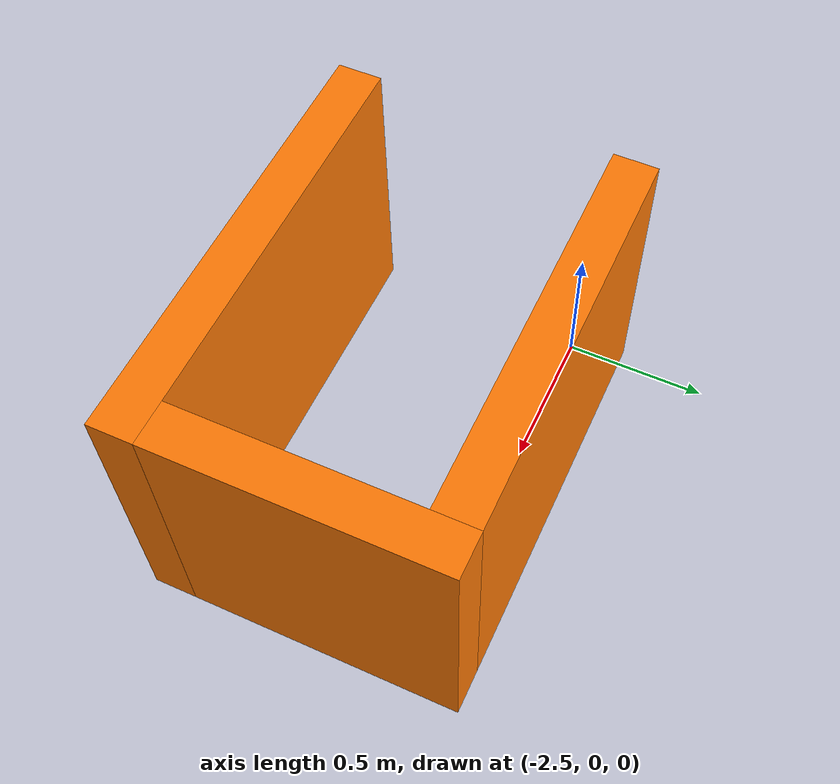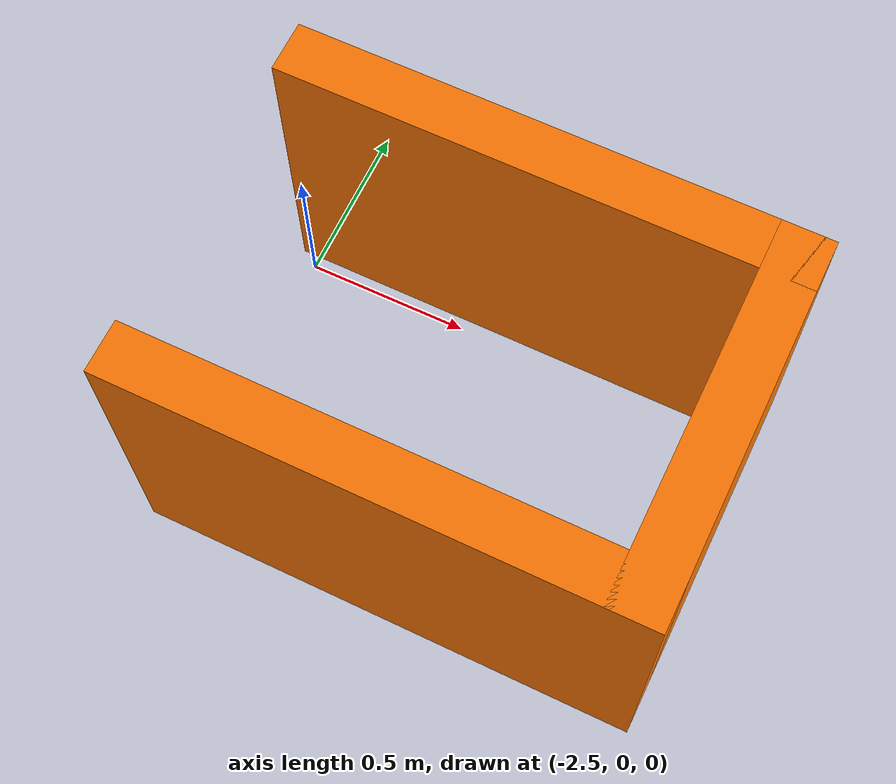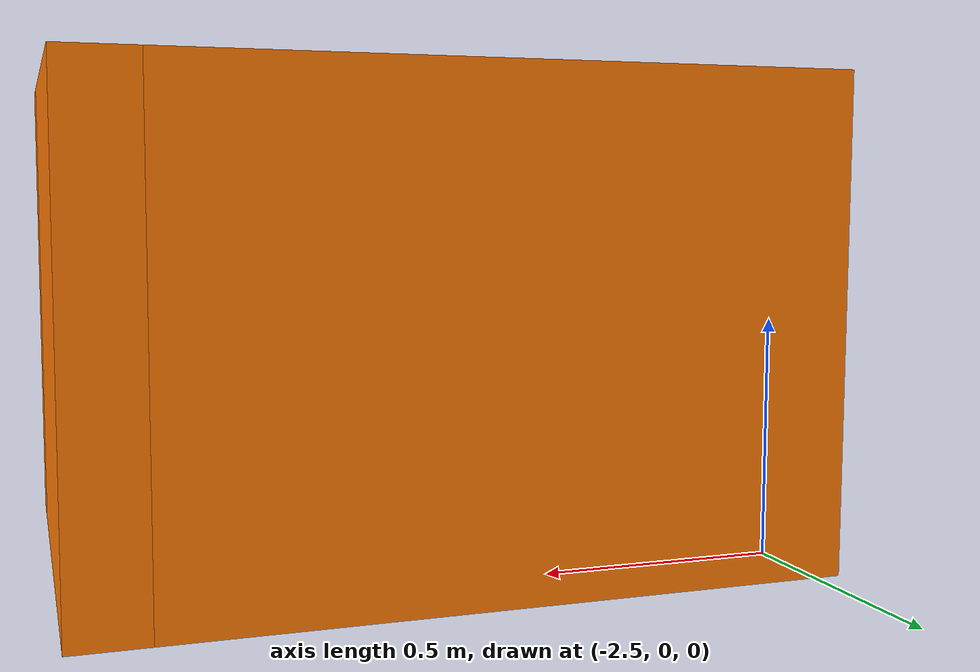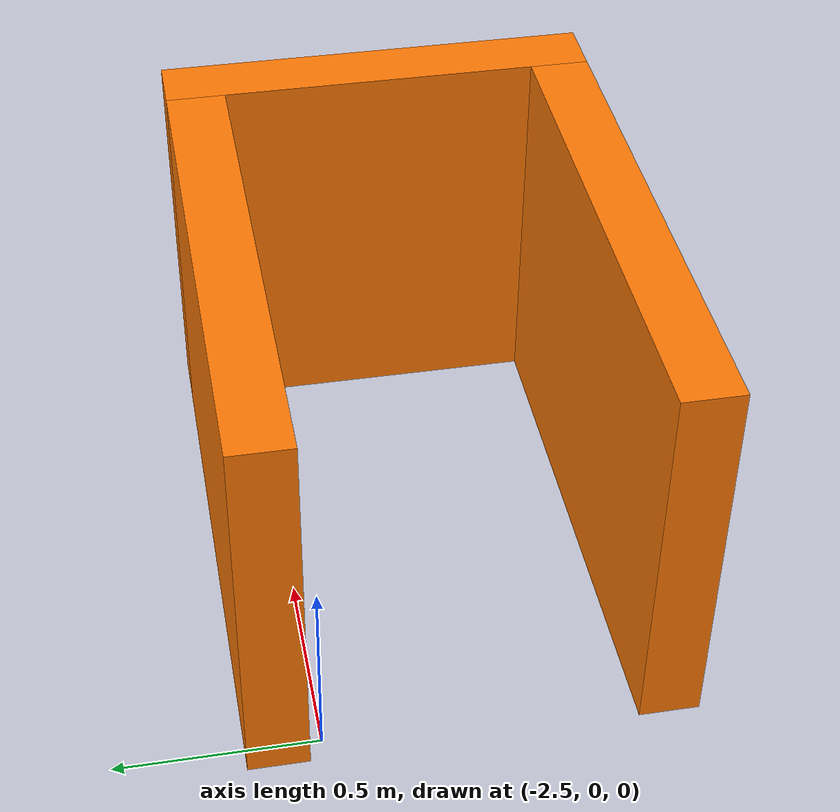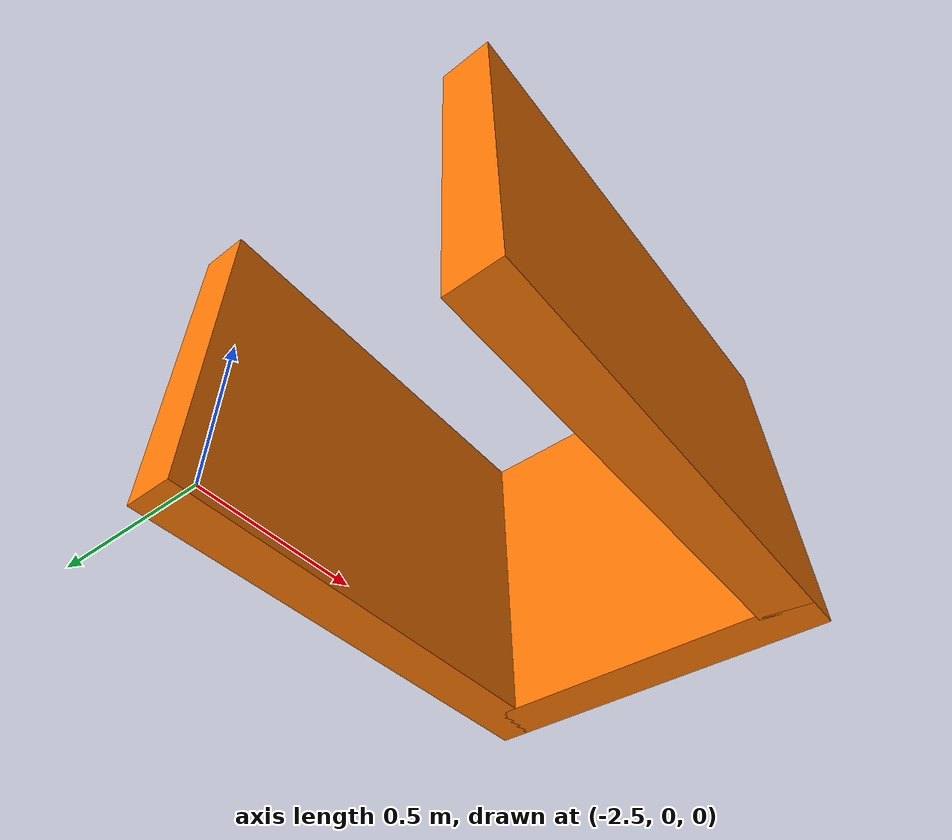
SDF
<?xml version='1.0'?>
<sdf version='1.7'>
  <model name='robot_docker_v2'>
    <pose>-1.2775 -0.365 0 0 -0 0</pose>
    <link name='Wall_16'>
      <collision name='Wall_16_Collision'>
        <geometry>
          <box>
            <size>1.1 0.15 1</size>
          </box>
        </geometry>
        <pose>0 0 0.5 0 -0 0</pose>
      </collision>
      <visual name='Wall_16_Visual'>
        <pose>0 0 0.5 0 -0 0</pose>
        <geometry>
          <box>
            <size>1.1 0.15 1</size>
          </box>
        </geometry>
        <material>
          <script>
            <uri>file://media/materials/scripts/gazebo.material</uri>
            <name>Gazebo/Grey</name>
          </script>
          <ambient>0.996078 0.47451 0.0196078 1</ambient>
        </material>
        <meta>
          <layer>0</layer>
        </meta>
      </visual>
      <pose>0.1475 0 0 0 -0 -1.5708</pose>
    </link>
    <link name='Wall_20'>
      <collision name='Wall_20_Collision'>
        <geometry>
          <box>
            <size>1.5 0.15 1</size>
          </box>
        </geometry>
        <pose>0 0 0.5 0 -0 0</pose>
      </collision>
      <visual name='Wall_20_Visual'>
        <pose>0 0 0.5 0 -0 0</pose>
        <geometry>
          <box>
            <size>1.5 0.15 1</size>
          </box>
        </geometry>
        <material>
          <script>
            <uri>file://media/materials/scripts/gazebo.material</uri>
            <name>Gazebo/Grey</name>
          </script>
          <ambient>0.996078 0.47451 0.0196078 1</ambient>
        </material>
        <meta>
          <layer>0</layer>
        </meta>
      </visual>
      <pose>-0.5275 0.475 0 0 -0 3.14159</pose>
    </link>
    <link name='Wall_23'>
      <collision name='Wall_23_Collision'>
        <geometry>
          <box>
            <size>1.5 0.15 1</size>
          </box>
        </geometry>
        <pose>0 0 0.5 0 -0 0</pose>
      </collision>
      <visual name='Wall_23_Visual'>
        <pose>0 0 0.5 0 -0 0</pose>
        <geometry>
          <box>
            <size>1.5 0.15 1</size>
          </box>
        </geometry>
        <material>
          <script>
            <uri>file://media/materials/scripts/gazebo.material</uri>
            <name>Gazebo/Grey</name>
          </script>
          <ambient>0.996078 0.47451 0.0196078 1</ambient>
        </material>
        <meta>
          <layer>0</layer>
        </meta>
      </visual>
      <pose>-0.5275 -0.475 0 0 -0 3.14159</pose>
    </link>
    <static>1</static>
  </model>
</sdf>
